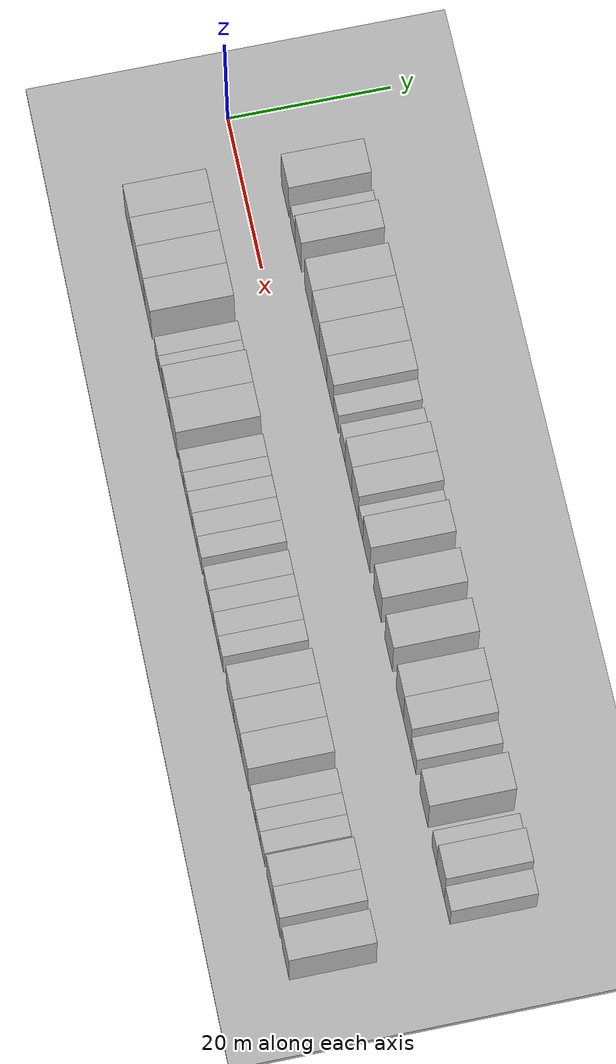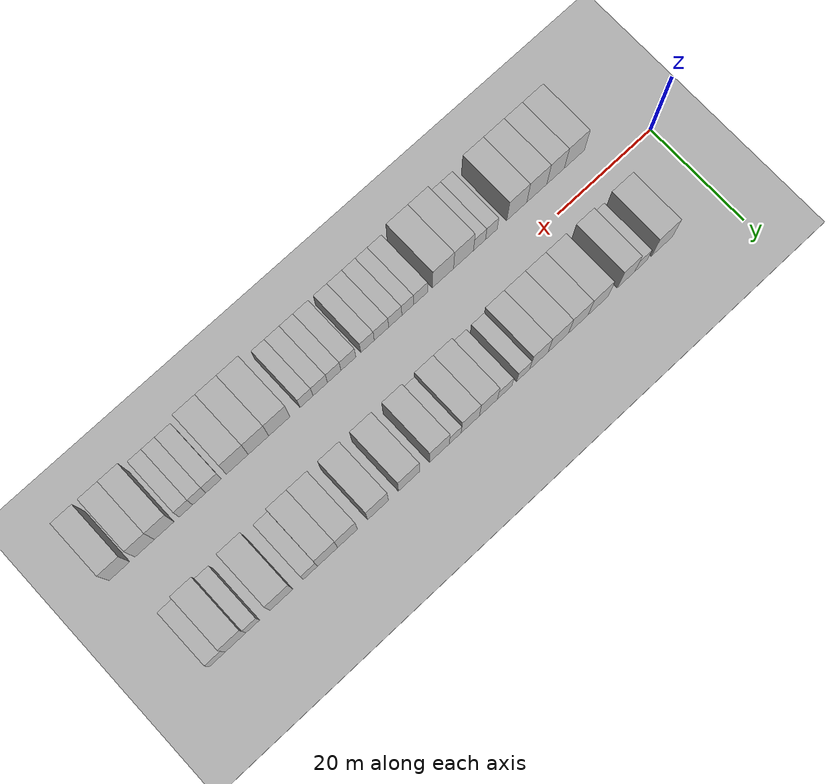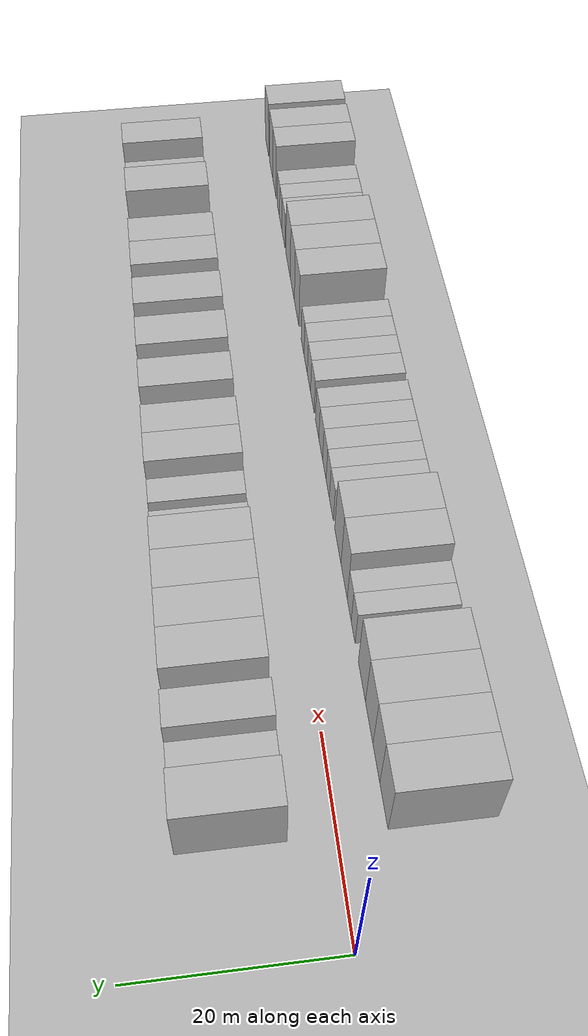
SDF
<sdf version="1.6">
 <world name="default">
  <include><name>ground_plane_1</name><uri>model://HANNAS_ground_plane</uri></include>
  <include>
   <name>ground_plane_2</name>
   <uri>model://HANNAS_ground_plane</uri>
   <pose>100 0 0  0 0 0</pose>
  </include>
  <model name="building_1">
   <static>1</static>
   <pose>12.2253 9.5000 0 0.000000 0.000000 1.570796</pose>
   <link name="link">
    <pose>0 0 4.50 0 0 0</pose>
    <collision name="collision"><geometry><box><size>10.0000 4.4505 9.0000</size></box></geometry></collision>
    <visual name="visual">
     <cast_shadows>0</cast_shadows>
     <geometry><box><size>10.0000 4.4505 9.0000</size></box></geometry>
     <material>
      <script>
       <uri>model://HANNAS_wall/materials/scripts</uri>
       <uri>model://HANNAS_wall/materials/textures</uri>
       <name>vrc/HANNAS_wall</name>
      </script>
     </material>
    </visual>
   </link>
  </model>
  <model name="building_2">
   <static>1</static>
   <pose>16.7551 9.5000 0 0.000000 0.000000 1.570796</pose>
   <link name="link">
    <pose>0 0 3.00 0 0 0</pose>
    <collision name="collision"><geometry><box><size>10.0000 2.6090 6.0000</size></box></geometry></collision>
    <visual name="visual">
     <cast_shadows>0</cast_shadows>
     <geometry><box><size>10.0000 2.6090 6.0000</size></box></geometry>
     <material>
      <script>
       <uri>model://HANNAS_wall/materials/scripts</uri>
       <uri>model://HANNAS_wall/materials/textures</uri>
       <name>vrc/HANNAS_wall</name>
      </script>
     </material>
    </visual>
   </link>
  </model>
  <model name="building_3">
   <static>1</static>
   <pose>19.8778 9.5000 0 0.000000 0.000000 1.570796</pose>
   <link name="link">
    <pose>0 0 4.50 0 0 0</pose>
    <collision name="collision"><geometry><box><size>10.0000 3.6366 9.0000</size></box></geometry></collision>
    <visual name="visual">
     <cast_shadows>0</cast_shadows>
     <geometry><box><size>10.0000 3.6366 9.0000</size></box></geometry>
     <material>
      <script>
       <uri>model://HANNAS_wall/materials/scripts</uri>
       <uri>model://HANNAS_wall/materials/textures</uri>
       <name>vrc/HANNAS_wall</name>
      </script>
     </material>
    </visual>
   </link>
  </model>
  <model name="building_4">
   <static>1</static>
   <pose>25.7958 9.5000 0 0.000000 0.000000 1.570796</pose>
   <link name="link">
    <pose>0 0 4.50 0 0 0</pose>
    <collision name="collision"><geometry><box><size>10.0000 4.1993 9.0000</size></box></geometry></collision>
    <visual name="visual">
     <cast_shadows>0</cast_shadows>
     <geometry><box><size>10.0000 4.1993 9.0000</size></box></geometry>
     <material>
      <script>
       <uri>model://HANNAS_wall/materials/scripts</uri>
       <uri>model://HANNAS_wall/materials/textures</uri>
       <name>vrc/HANNAS_wall</name>
      </script>
     </material>
    </visual>
   </link>
  </model>
  <model name="building_5">
   <static>1</static>
   <pose>29.9410 9.5000 0 0.000000 0.000000 1.570796</pose>
   <link name="link">
    <pose>0 0 4.50 0 0 0</pose>
    <collision name="collision"><geometry><box><size>10.0000 4.0912 9.0000</size></box></geometry></collision>
    <visual name="visual">
     <cast_shadows>0</cast_shadows>
     <geometry><box><size>10.0000 4.0912 9.0000</size></box></geometry>
     <material>
      <script>
       <uri>model://HANNAS_wall/materials/scripts</uri>
       <uri>model://HANNAS_wall/materials/textures</uri>
       <name>vrc/HANNAS_wall</name>
      </script>
     </material>
    </visual>
   </link>
  </model>
  <model name="building_6">
   <static>1</static>
   <pose>34.1102 9.5000 0 0.000000 0.000000 1.570796</pose>
   <link name="link">
    <pose>0 0 4.50 0 0 0</pose>
    <collision name="collision"><geometry><box><size>10.0000 4.2470 9.0000</size></box></geometry></collision>
    <visual name="visual">
     <cast_shadows>0</cast_shadows>
     <geometry><box><size>10.0000 4.2470 9.0000</size></box></geometry>
     <material>
      <script>
       <uri>model://HANNAS_wall/materials/scripts</uri>
       <uri>model://HANNAS_wall/materials/textures</uri>
       <name>vrc/HANNAS_wall</name>
      </script>
     </material>
    </visual>
   </link>
  </model>
  <model name="building_7">
   <static>1</static>
   <pose>38.1271 9.5000 0 0.000000 0.000000 1.570796</pose>
   <link name="link">
    <pose>0 0 4.50 0 0 0</pose>
    <collision name="collision"><geometry><box><size>10.0000 3.7868 9.0000</size></box></geometry></collision>
    <visual name="visual">
     <cast_shadows>0</cast_shadows>
     <geometry><box><size>10.0000 3.7868 9.0000</size></box></geometry>
     <material>
      <script>
       <uri>model://HANNAS_wall/materials/scripts</uri>
       <uri>model://HANNAS_wall/materials/textures</uri>
       <name>vrc/HANNAS_wall</name>
      </script>
     </material>
    </visual>
   </link>
  </model>
  <model name="building_8">
   <static>1</static>
   <pose>41.3472 9.5000 0 0.000000 0.000000 1.570796</pose>
   <link name="link">
    <pose>0 0 3.00 0 0 0</pose>
    <collision name="collision"><geometry><box><size>10.0000 2.6535 6.0000</size></box></geometry></collision>
    <visual name="visual">
     <cast_shadows>0</cast_shadows>
     <geometry><box><size>10.0000 2.6535 6.0000</size></box></geometry>
     <material>
      <script>
       <uri>model://HANNAS_wall/materials/scripts</uri>
       <uri>model://HANNAS_wall/materials/textures</uri>
       <name>vrc/HANNAS_wall</name>
      </script>
     </material>
    </visual>
   </link>
  </model>
  <model name="building_9">
   <static>1</static>
   <pose>45.1567 9.5000 0 0.000000 0.000000 1.570796</pose>
   <link name="link">
    <pose>0 0 3.00 0 0 0</pose>
    <collision name="collision"><geometry><box><size>10.0000 2.9655 6.0000</size></box></geometry></collision>
    <visual name="visual">
     <cast_shadows>0</cast_shadows>
     <geometry><box><size>10.0000 2.9655 6.0000</size></box></geometry>
     <material>
      <script>
       <uri>model://HANNAS_wall/materials/scripts</uri>
       <uri>model://HANNAS_wall/materials/textures</uri>
       <name>vrc/HANNAS_wall</name>
      </script>
     </material>
    </visual>
   </link>
  </model>
  <model name="building_10">
   <static>1</static>
   <pose>48.4828 9.5000 0 0.000000 0.000000 1.570796</pose>
   <link name="link">
    <pose>0 0 4.50 0 0 0</pose>
    <collision name="collision"><geometry><box><size>10.0000 3.6868 9.0000</size></box></geometry></collision>
    <visual name="visual">
     <cast_shadows>0</cast_shadows>
     <geometry><box><size>10.0000 3.6868 9.0000</size></box></geometry>
     <material>
      <script>
       <uri>model://HANNAS_wall/materials/scripts</uri>
       <uri>model://HANNAS_wall/materials/textures</uri>
       <name>vrc/HANNAS_wall</name>
      </script>
     </material>
    </visual>
   </link>
  </model>
  <model name="building_11">
   <static>1</static>
   <pose>52.1772 9.5000 0 0.000000 0.000000 1.570796</pose>
   <link name="link">
    <pose>0 0 4.50 0 0 0</pose>
    <collision name="collision"><geometry><box><size>10.0000 3.7020 9.0000</size></box></geometry></collision>
    <visual name="visual">
     <cast_shadows>0</cast_shadows>
     <geometry><box><size>10.0000 3.7020 9.0000</size></box></geometry>
     <material>
      <script>
       <uri>model://HANNAS_wall/materials/scripts</uri>
       <uri>model://HANNAS_wall/materials/textures</uri>
       <name>vrc/HANNAS_wall</name>
      </script>
     </material>
    </visual>
   </link>
  </model>
  <model name="building_12">
   <static>1</static>
   <pose>55.2314 9.5000 0 0.000000 0.000000 1.570796</pose>
   <link name="link">
    <pose>0 0 3.00 0 0 0</pose>
    <collision name="collision"><geometry><box><size>10.0000 2.4064 6.0000</size></box></geometry></collision>
    <visual name="visual">
     <cast_shadows>0</cast_shadows>
     <geometry><box><size>10.0000 2.4064 6.0000</size></box></geometry>
     <material>
      <script>
       <uri>model://HANNAS_wall/materials/scripts</uri>
       <uri>model://HANNAS_wall/materials/textures</uri>
       <name>vrc/HANNAS_wall</name>
      </script>
     </material>
    </visual>
   </link>
  </model>
  <model name="building_13">
   <static>1</static>
   <pose>58.4080 9.5000 0 0.000000 0.000000 1.570796</pose>
   <link name="link">
    <pose>0 0 4.50 0 0 0</pose>
    <collision name="collision"><geometry><box><size>10.0000 3.9468 9.0000</size></box></geometry></collision>
    <visual name="visual">
     <cast_shadows>0</cast_shadows>
     <geometry><box><size>10.0000 3.9468 9.0000</size></box></geometry>
     <material>
      <script>
       <uri>model://HANNAS_wall/materials/scripts</uri>
       <uri>model://HANNAS_wall/materials/textures</uri>
       <name>vrc/HANNAS_wall</name>
      </script>
     </material>
    </visual>
   </link>
  </model>
  <model name="building_14">
   <static>1</static>
   <pose>64.4760 9.5000 0 0.000000 0.000000 1.570796</pose>
   <link name="link">
    <pose>0 0 4.50 0 0 0</pose>
    <collision name="collision"><geometry><box><size>10.0000 4.1894 9.0000</size></box></geometry></collision>
    <visual name="visual">
     <cast_shadows>0</cast_shadows>
     <geometry><box><size>10.0000 4.1894 9.0000</size></box></geometry>
     <material>
      <script>
       <uri>model://HANNAS_wall/materials/scripts</uri>
       <uri>model://HANNAS_wall/materials/textures</uri>
       <name>vrc/HANNAS_wall</name>
      </script>
     </material>
    </visual>
   </link>
  </model>
  <model name="building_15">
   <static>1</static>
   <pose>70.6249 9.5000 0 0.000000 0.000000 1.570796</pose>
   <link name="link">
    <pose>0 0 4.50 0 0 0</pose>
    <collision name="collision"><geometry><box><size>10.0000 4.1084 9.0000</size></box></geometry></collision>
    <visual name="visual">
     <cast_shadows>0</cast_shadows>
     <geometry><box><size>10.0000 4.1084 9.0000</size></box></geometry>
     <material>
      <script>
       <uri>model://HANNAS_wall/materials/scripts</uri>
       <uri>model://HANNAS_wall/materials/textures</uri>
       <name>vrc/HANNAS_wall</name>
      </script>
     </material>
    </visual>
   </link>
  </model>
  <model name="building_16">
   <static>1</static>
   <pose>76.6227 9.5000 0 0.000000 0.000000 1.570796</pose>
   <link name="link">
    <pose>0 0 4.50 0 0 0</pose>
    <collision name="collision"><geometry><box><size>10.0000 3.8872 9.0000</size></box></geometry></collision>
    <visual name="visual">
     <cast_shadows>0</cast_shadows>
     <geometry><box><size>10.0000 3.8872 9.0000</size></box></geometry>
     <material>
      <script>
       <uri>model://HANNAS_wall/materials/scripts</uri>
       <uri>model://HANNAS_wall/materials/textures</uri>
       <name>vrc/HANNAS_wall</name>
      </script>
     </material>
    </visual>
   </link>
  </model>
  <model name="building_17">
   <static>1</static>
   <pose>80.5345 9.5000 0 0.000000 0.000000 1.570796</pose>
   <link name="link">
    <pose>0 0 4.50 0 0 0</pose>
    <collision name="collision"><geometry><box><size>10.0000 3.9363 9.0000</size></box></geometry></collision>
    <visual name="visual">
     <cast_shadows>0</cast_shadows>
     <geometry><box><size>10.0000 3.9363 9.0000</size></box></geometry>
     <material>
      <script>
       <uri>model://HANNAS_wall/materials/scripts</uri>
       <uri>model://HANNAS_wall/materials/textures</uri>
       <name>vrc/HANNAS_wall</name>
      </script>
     </material>
    </visual>
   </link>
  </model>
  <model name="building_18">
   <static>1</static>
   <pose>83.8869 9.5000 0 0.000000 0.000000 1.570796</pose>
   <link name="link">
    <pose>0 0 3.00 0 0 0</pose>
    <collision name="collision"><geometry><box><size>10.0000 2.7687 6.0000</size></box></geometry></collision>
    <visual name="visual">
     <cast_shadows>0</cast_shadows>
     <geometry><box><size>10.0000 2.7687 6.0000</size></box></geometry>
     <material>
      <script>
       <uri>model://HANNAS_wall/materials/scripts</uri>
       <uri>model://HANNAS_wall/materials/textures</uri>
       <name>vrc/HANNAS_wall</name>
      </script>
     </material>
    </visual>
   </link>
  </model>
  <model name="building_19">
   <static>1</static>
   <pose>89.4731 9.5000 0 0.000000 0.000000 1.570796</pose>
   <link name="link">
    <pose>0 0 4.50 0 0 0</pose>
    <collision name="collision"><geometry><box><size>10.0000 4.4036 9.0000</size></box></geometry></collision>
    <visual name="visual">
     <cast_shadows>0</cast_shadows>
     <geometry><box><size>10.0000 4.4036 9.0000</size></box></geometry>
     <material>
      <script>
       <uri>model://HANNAS_wall/materials/scripts</uri>
       <uri>model://HANNAS_wall/materials/textures</uri>
       <name>vrc/HANNAS_wall</name>
      </script>
     </material>
    </visual>
   </link>
  </model>
  <model name="building_20">
   <static>1</static>
   <pose>94.9758 9.5000 0 0.000000 0.000000 1.570796</pose>
   <link name="link">
    <pose>0 0 3.00 0 0 0</pose>
    <collision name="collision"><geometry><box><size>10.0000 2.6017 6.0000</size></box></geometry></collision>
    <visual name="visual">
     <cast_shadows>0</cast_shadows>
     <geometry><box><size>10.0000 2.6017 6.0000</size></box></geometry>
     <material>
      <script>
       <uri>model://HANNAS_wall/materials/scripts</uri>
       <uri>model://HANNAS_wall/materials/textures</uri>
       <name>vrc/HANNAS_wall</name>
      </script>
     </material>
    </visual>
   </link>
  </model>
  <model name="building_21">
   <static>1</static>
   <pose>98.2607 9.5000 0 0.000000 0.000000 1.570796</pose>
   <link name="link">
    <pose>0 0 4.50 0 0 0</pose>
    <collision name="collision"><geometry><box><size>10.0000 3.9682 9.0000</size></box></geometry></collision>
    <visual name="visual">
     <cast_shadows>0</cast_shadows>
     <geometry><box><size>10.0000 3.9682 9.0000</size></box></geometry>
     <material>
      <script>
       <uri>model://HANNAS_wall/materials/scripts</uri>
       <uri>model://HANNAS_wall/materials/textures</uri>
       <name>vrc/HANNAS_wall</name>
      </script>
     </material>
    </visual>
   </link>
  </model>
  <model name="building_22">
   <static>1</static>
   <pose>101.7317 9.5000 0 0.000000 0.000000 1.570796</pose>
   <link name="link">
    <pose>0 0 3.00 0 0 0</pose>
    <collision name="collision"><geometry><box><size>10.0000 2.9739 6.0000</size></box></geometry></collision>
    <visual name="visual">
     <cast_shadows>0</cast_shadows>
     <geometry><box><size>10.0000 2.9739 6.0000</size></box></geometry>
     <material>
      <script>
       <uri>model://HANNAS_wall/materials/scripts</uri>
       <uri>model://HANNAS_wall/materials/textures</uri>
       <name>vrc/HANNAS_wall</name>
      </script>
     </material>
    </visual>
   </link>
  </model>
  <model name="building_49">
   <static>1</static>
   <pose>12.1509 -9.5000 0 0.000000 0.000000 1.570796</pose>
   <link name="link">
    <pose>0 0 4.50 0 0 0</pose>
    <collision name="collision"><geometry><box><size>10.0000 4.3019 9.0000</size></box></geometry></collision>
    <visual name="visual">
     <cast_shadows>0</cast_shadows>
     <geometry><box><size>10.0000 4.3019 9.0000</size></box></geometry>
     <material>
      <script>
       <uri>model://HANNAS_wall/materials/scripts</uri>
       <uri>model://HANNAS_wall/materials/textures</uri>
       <name>vrc/HANNAS_wall</name>
      </script>
     </material>
    </visual>
   </link>
  </model>
  <model name="building_50">
   <static>1</static>
   <pose>16.1633 -9.5000 0 0.000000 0.000000 1.570796</pose>
   <link name="link">
    <pose>0 0 4.50 0 0 0</pose>
    <collision name="collision"><geometry><box><size>10.0000 3.7228 9.0000</size></box></geometry></collision>
    <visual name="visual">
     <cast_shadows>0</cast_shadows>
     <geometry><box><size>10.0000 3.7228 9.0000</size></box></geometry>
     <material>
      <script>
       <uri>model://HANNAS_wall/materials/scripts</uri>
       <uri>model://HANNAS_wall/materials/textures</uri>
       <name>vrc/HANNAS_wall</name>
      </script>
     </material>
    </visual>
   </link>
  </model>
  <model name="building_51">
   <static>1</static>
   <pose>20.1488 -9.5000 0 0.000000 0.000000 1.570796</pose>
   <link name="link">
    <pose>0 0 4.50 0 0 0</pose>
    <collision name="collision"><geometry><box><size>10.0000 4.2482 9.0000</size></box></geometry></collision>
    <visual name="visual">
     <cast_shadows>0</cast_shadows>
     <geometry><box><size>10.0000 4.2482 9.0000</size></box></geometry>
     <material>
      <script>
       <uri>model://HANNAS_wall/materials/scripts</uri>
       <uri>model://HANNAS_wall/materials/textures</uri>
       <name>vrc/HANNAS_wall</name>
      </script>
     </material>
    </visual>
   </link>
  </model>
  <model name="building_52">
   <static>1</static>
   <pose>24.3848 -9.5000 0 0.000000 0.000000 1.570796</pose>
   <link name="link">
    <pose>0 0 4.50 0 0 0</pose>
    <collision name="collision"><geometry><box><size>10.0000 4.2238 9.0000</size></box></geometry></collision>
    <visual name="visual">
     <cast_shadows>0</cast_shadows>
     <geometry><box><size>10.0000 4.2238 9.0000</size></box></geometry>
     <material>
      <script>
       <uri>model://HANNAS_wall/materials/scripts</uri>
       <uri>model://HANNAS_wall/materials/textures</uri>
       <name>vrc/HANNAS_wall</name>
      </script>
     </material>
    </visual>
   </link>
  </model>
  <model name="building_53">
   <static>1</static>
   <pose>29.7229 -9.5000 0 0.000000 0.000000 1.570796</pose>
   <link name="link">
    <pose>0 0 3.00 0 0 0</pose>
    <collision name="collision"><geometry><box><size>10.0000 2.4525 6.0000</size></box></geometry></collision>
    <visual name="visual">
     <cast_shadows>0</cast_shadows>
     <geometry><box><size>10.0000 2.4525 6.0000</size></box></geometry>
     <material>
      <script>
       <uri>model://HANNAS_wall/materials/scripts</uri>
       <uri>model://HANNAS_wall/materials/textures</uri>
       <name>vrc/HANNAS_wall</name>
      </script>
     </material>
    </visual>
   </link>
  </model>
  <model name="building_54">
   <static>1</static>
   <pose>32.2058 -9.5000 0 0.000000 0.000000 1.570796</pose>
   <link name="link">
    <pose>0 0 3.00 0 0 0</pose>
    <collision name="collision"><geometry><box><size>10.0000 2.5132 6.0000</size></box></geometry></collision>
    <visual name="visual">
     <cast_shadows>0</cast_shadows>
     <geometry><box><size>10.0000 2.5132 6.0000</size></box></geometry>
     <material>
      <script>
       <uri>model://HANNAS_wall/materials/scripts</uri>
       <uri>model://HANNAS_wall/materials/textures</uri>
       <name>vrc/HANNAS_wall</name>
      </script>
     </material>
    </visual>
   </link>
  </model>
  <model name="building_55">
   <static>1</static>
   <pose>35.5245 -9.5000 0 0.000000 0.000000 1.570796</pose>
   <link name="link">
    <pose>0 0 4.50 0 0 0</pose>
    <collision name="collision"><geometry><box><size>10.0000 4.1244 9.0000</size></box></geometry></collision>
    <visual name="visual">
     <cast_shadows>0</cast_shadows>
     <geometry><box><size>10.0000 4.1244 9.0000</size></box></geometry>
     <material>
      <script>
       <uri>model://HANNAS_wall/materials/scripts</uri>
       <uri>model://HANNAS_wall/materials/textures</uri>
       <name>vrc/HANNAS_wall</name>
      </script>
     </material>
    </visual>
   </link>
  </model>
  <model name="building_56">
   <static>1</static>
   <pose>39.7686 -9.5000 0 0.000000 0.000000 1.570796</pose>
   <link name="link">
    <pose>0 0 4.50 0 0 0</pose>
    <collision name="collision"><geometry><box><size>10.0000 4.3638 9.0000</size></box></geometry></collision>
    <visual name="visual">
     <cast_shadows>0</cast_shadows>
     <geometry><box><size>10.0000 4.3638 9.0000</size></box></geometry>
     <material>
      <script>
       <uri>model://HANNAS_wall/materials/scripts</uri>
       <uri>model://HANNAS_wall/materials/textures</uri>
       <name>vrc/HANNAS_wall</name>
      </script>
     </material>
    </visual>
   </link>
  </model>
  <model name="building_57">
   <static>1</static>
   <pose>44.3720 -9.5000 0 0.000000 0.000000 1.570796</pose>
   <link name="link">
    <pose>0 0 3.00 0 0 0</pose>
    <collision name="collision"><geometry><box><size>10.0000 2.8429 6.0000</size></box></geometry></collision>
    <visual name="visual">
     <cast_shadows>0</cast_shadows>
     <geometry><box><size>10.0000 2.8429 6.0000</size></box></geometry>
     <material>
      <script>
       <uri>model://HANNAS_wall/materials/scripts</uri>
       <uri>model://HANNAS_wall/materials/textures</uri>
       <name>vrc/HANNAS_wall</name>
      </script>
     </material>
    </visual>
   </link>
  </model>
  <model name="building_58">
   <static>1</static>
   <pose>47.0059 -9.5000 0 0.000000 0.000000 1.570796</pose>
   <link name="link">
    <pose>0 0 3.00 0 0 0</pose>
    <collision name="collision"><geometry><box><size>10.0000 2.4249 6.0000</size></box></geometry></collision>
    <visual name="visual">
     <cast_shadows>0</cast_shadows>
     <geometry><box><size>10.0000 2.4249 6.0000</size></box></geometry>
     <material>
      <script>
       <uri>model://HANNAS_wall/materials/scripts</uri>
       <uri>model://HANNAS_wall/materials/textures</uri>
       <name>vrc/HANNAS_wall</name>
      </script>
     </material>
    </visual>
   </link>
  </model>
  <model name="building_59">
   <static>1</static>
   <pose>49.5654 -9.5000 0 0.000000 0.000000 1.570796</pose>
   <link name="link">
    <pose>0 0 3.00 0 0 0</pose>
    <collision name="collision"><geometry><box><size>10.0000 2.6940 6.0000</size></box></geometry></collision>
    <visual name="visual">
     <cast_shadows>0</cast_shadows>
     <geometry><box><size>10.0000 2.6940 6.0000</size></box></geometry>
     <material>
      <script>
       <uri>model://HANNAS_wall/materials/scripts</uri>
       <uri>model://HANNAS_wall/materials/textures</uri>
       <name>vrc/HANNAS_wall</name>
      </script>
     </material>
    </visual>
   </link>
  </model>
  <model name="building_60">
   <static>1</static>
   <pose>52.3750 -9.5000 0 0.000000 0.000000 1.570796</pose>
   <link name="link">
    <pose>0 0 3.00 0 0 0</pose>
    <collision name="collision"><geometry><box><size>10.0000 2.9251 6.0000</size></box></geometry></collision>
    <visual name="visual">
     <cast_shadows>0</cast_shadows>
     <geometry><box><size>10.0000 2.9251 6.0000</size></box></geometry>
     <material>
      <script>
       <uri>model://HANNAS_wall/materials/scripts</uri>
       <uri>model://HANNAS_wall/materials/textures</uri>
       <name>vrc/HANNAS_wall</name>
      </script>
     </material>
    </visual>
   </link>
  </model>
  <model name="building_61">
   <static>1</static>
   <pose>55.1927 -9.5000 0 0.000000 0.000000 1.570796</pose>
   <link name="link">
    <pose>0 0 3.00 0 0 0</pose>
    <collision name="collision"><geometry><box><size>10.0000 2.7103 6.0000</size></box></geometry></collision>
    <visual name="visual">
     <cast_shadows>0</cast_shadows>
     <geometry><box><size>10.0000 2.7103 6.0000</size></box></geometry>
     <material>
      <script>
       <uri>model://HANNAS_wall/materials/scripts</uri>
       <uri>model://HANNAS_wall/materials/textures</uri>
       <name>vrc/HANNAS_wall</name>
      </script>
     </material>
    </visual>
   </link>
  </model>
  <model name="building_62">
   <static>1</static>
   <pose>59.0404 -9.5000 0 0.000000 0.000000 1.570796</pose>
   <link name="link">
    <pose>0 0 3.00 0 0 0</pose>
    <collision name="collision"><geometry><box><size>10.0000 2.9851 6.0000</size></box></geometry></collision>
    <visual name="visual">
     <cast_shadows>0</cast_shadows>
     <geometry><box><size>10.0000 2.9851 6.0000</size></box></geometry>
     <material>
      <script>
       <uri>model://HANNAS_wall/materials/scripts</uri>
       <uri>model://HANNAS_wall/materials/textures</uri>
       <name>vrc/HANNAS_wall</name>
      </script>
     </material>
    </visual>
   </link>
  </model>
  <model name="building_63">
   <static>1</static>
   <pose>61.8861 -9.5000 0 0.000000 0.000000 1.570796</pose>
   <link name="link">
    <pose>0 0 3.00 0 0 0</pose>
    <collision name="collision"><geometry><box><size>10.0000 2.7064 6.0000</size></box></geometry></collision>
    <visual name="visual">
     <cast_shadows>0</cast_shadows>
     <geometry><box><size>10.0000 2.7064 6.0000</size></box></geometry>
     <material>
      <script>
       <uri>model://HANNAS_wall/materials/scripts</uri>
       <uri>model://HANNAS_wall/materials/textures</uri>
       <name>vrc/HANNAS_wall</name>
      </script>
     </material>
    </visual>
   </link>
  </model>
  <model name="building_64">
   <static>1</static>
   <pose>64.6893 -9.5000 0 0.000000 0.000000 1.570796</pose>
   <link name="link">
    <pose>0 0 3.00 0 0 0</pose>
    <collision name="collision"><geometry><box><size>10.0000 2.9000 6.0000</size></box></geometry></collision>
    <visual name="visual">
     <cast_shadows>0</cast_shadows>
     <geometry><box><size>10.0000 2.9000 6.0000</size></box></geometry>
     <material>
      <script>
       <uri>model://HANNAS_wall/materials/scripts</uri>
       <uri>model://HANNAS_wall/materials/textures</uri>
       <name>vrc/HANNAS_wall</name>
      </script>
     </material>
    </visual>
   </link>
  </model>
  <model name="building_65">
   <static>1</static>
   <pose>67.4357 -9.5000 0 0.000000 0.000000 1.570796</pose>
   <link name="link">
    <pose>0 0 3.00 0 0 0</pose>
    <collision name="collision"><geometry><box><size>10.0000 2.5927 6.0000</size></box></geometry></collision>
    <visual name="visual">
     <cast_shadows>0</cast_shadows>
     <geometry><box><size>10.0000 2.5927 6.0000</size></box></geometry>
     <material>
      <script>
       <uri>model://HANNAS_wall/materials/scripts</uri>
       <uri>model://HANNAS_wall/materials/textures</uri>
       <name>vrc/HANNAS_wall</name>
      </script>
     </material>
    </visual>
   </link>
  </model>
  <model name="building_66">
   <static>1</static>
   <pose>72.8266 -9.5000 0 0.000000 0.000000 1.570796</pose>
   <link name="link">
    <pose>0 0 4.50 0 0 0</pose>
    <collision name="collision"><geometry><box><size>10.0000 4.1890 9.0000</size></box></geometry></collision>
    <visual name="visual">
     <cast_shadows>0</cast_shadows>
     <geometry><box><size>10.0000 4.1890 9.0000</size></box></geometry>
     <material>
      <script>
       <uri>model://HANNAS_wall/materials/scripts</uri>
       <uri>model://HANNAS_wall/materials/textures</uri>
       <name>vrc/HANNAS_wall</name>
      </script>
     </material>
    </visual>
   </link>
  </model>
  <model name="building_67">
   <static>1</static>
   <pose>76.9434 -9.5000 0 0.000000 0.000000 1.570796</pose>
   <link name="link">
    <pose>0 0 4.50 0 0 0</pose>
    <collision name="collision"><geometry><box><size>10.0000 4.0447 9.0000</size></box></geometry></collision>
    <visual name="visual">
     <cast_shadows>0</cast_shadows>
     <geometry><box><size>10.0000 4.0447 9.0000</size></box></geometry>
     <material>
      <script>
       <uri>model://HANNAS_wall/materials/scripts</uri>
       <uri>model://HANNAS_wall/materials/textures</uri>
       <name>vrc/HANNAS_wall</name>
      </script>
     </material>
    </visual>
   </link>
  </model>
  <model name="building_68">
   <static>1</static>
   <pose>81.0955 -9.5000 0 0.000000 0.000000 1.570796</pose>
   <link name="link">
    <pose>0 0 4.50 0 0 0</pose>
    <collision name="collision"><geometry><box><size>10.0000 4.2594 9.0000</size></box></geometry></collision>
    <visual name="visual">
     <cast_shadows>0</cast_shadows>
     <geometry><box><size>10.0000 4.2594 9.0000</size></box></geometry>
     <material>
      <script>
       <uri>model://HANNAS_wall/materials/scripts</uri>
       <uri>model://HANNAS_wall/materials/textures</uri>
       <name>vrc/HANNAS_wall</name>
      </script>
     </material>
    </visual>
   </link>
  </model>
  <model name="building_69">
   <static>1</static>
   <pose>85.7137 -9.5000 0 0.000000 0.000000 1.570796</pose>
   <link name="link">
    <pose>0 0 3.00 0 0 0</pose>
    <collision name="collision"><geometry><box><size>10.0000 2.9771 6.0000</size></box></geometry></collision>
    <visual name="visual">
     <cast_shadows>0</cast_shadows>
     <geometry><box><size>10.0000 2.9771 6.0000</size></box></geometry>
     <material>
      <script>
       <uri>model://HANNAS_wall/materials/scripts</uri>
       <uri>model://HANNAS_wall/materials/textures</uri>
       <name>vrc/HANNAS_wall</name>
      </script>
     </material>
    </visual>
   </link>
  </model>
  <model name="building_70">
   <static>1</static>
   <pose>88.4918 -9.5000 0 0.000000 0.000000 1.570796</pose>
   <link name="link">
    <pose>0 0 3.00 0 0 0</pose>
    <collision name="collision"><geometry><box><size>10.0000 2.5791 6.0000</size></box></geometry></collision>
    <visual name="visual">
     <cast_shadows>0</cast_shadows>
     <geometry><box><size>10.0000 2.5791 6.0000</size></box></geometry>
     <material>
      <script>
       <uri>model://HANNAS_wall/materials/scripts</uri>
       <uri>model://HANNAS_wall/materials/textures</uri>
       <name>vrc/HANNAS_wall</name>
      </script>
     </material>
    </visual>
   </link>
  </model>
  <model name="building_71">
   <static>1</static>
   <pose>91.0784 -9.5000 0 0.000000 0.000000 1.570796</pose>
   <link name="link">
    <pose>0 0 3.00 0 0 0</pose>
    <collision name="collision"><geometry><box><size>10.0000 2.5940 6.0000</size></box></geometry></collision>
    <visual name="visual">
     <cast_shadows>0</cast_shadows>
     <geometry><box><size>10.0000 2.5940 6.0000</size></box></geometry>
     <material>
      <script>
       <uri>model://HANNAS_wall/materials/scripts</uri>
       <uri>model://HANNAS_wall/materials/textures</uri>
       <name>vrc/HANNAS_wall</name>
      </script>
     </material>
    </visual>
   </link>
  </model>
  <model name="building_72">
   <static>1</static>
   <pose>95.2526 -9.5000 0 0.000000 0.000000 1.570796</pose>
   <link name="link">
    <pose>0 0 4.50 0 0 0</pose>
    <collision name="collision"><geometry><box><size>10.0000 3.7545 9.0000</size></box></geometry></collision>
    <visual name="visual">
     <cast_shadows>0</cast_shadows>
     <geometry><box><size>10.0000 3.7545 9.0000</size></box></geometry>
     <material>
      <script>
       <uri>model://HANNAS_wall/materials/scripts</uri>
       <uri>model://HANNAS_wall/materials/textures</uri>
       <name>vrc/HANNAS_wall</name>
      </script>
     </material>
    </visual>
   </link>
  </model>
  <model name="building_73">
   <static>1</static>
   <pose>98.9768 -9.5000 0 0.000000 0.000000 1.570796</pose>
   <link name="link">
    <pose>0 0 4.50 0 0 0</pose>
    <collision name="collision"><geometry><box><size>10.0000 3.6940 9.0000</size></box></geometry></collision>
    <visual name="visual">
     <cast_shadows>0</cast_shadows>
     <geometry><box><size>10.0000 3.6940 9.0000</size></box></geometry>
     <material>
      <script>
       <uri>model://HANNAS_wall/materials/scripts</uri>
       <uri>model://HANNAS_wall/materials/textures</uri>
       <name>vrc/HANNAS_wall</name>
      </script>
     </material>
    </visual>
   </link>
  </model>
  <model name="building_74">
   <static>1</static>
   <pose>103.7938 -9.5000 0 0.000000 0.000000 1.570796</pose>
   <link name="link">
    <pose>0 0 4.50 0 0 0</pose>
    <collision name="collision"><geometry><box><size>10.0000 3.9399 9.0000</size></box></geometry></collision>
    <visual name="visual">
     <cast_shadows>0</cast_shadows>
     <geometry><box><size>10.0000 3.9399 9.0000</size></box></geometry>
     <material>
      <script>
       <uri>model://HANNAS_wall/materials/scripts</uri>
       <uri>model://HANNAS_wall/materials/textures</uri>
       <name>vrc/HANNAS_wall</name>
      </script>
     </material>
    </visual>
   </link>
  </model>
 </world>
</sdf>
